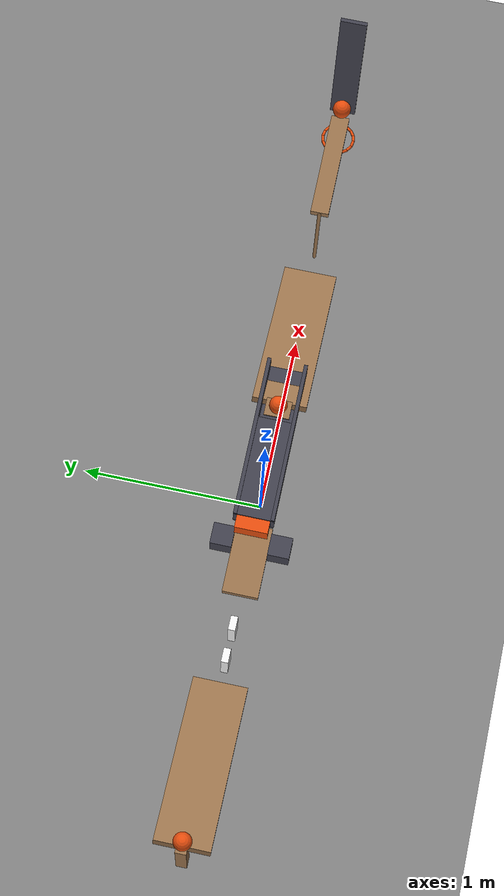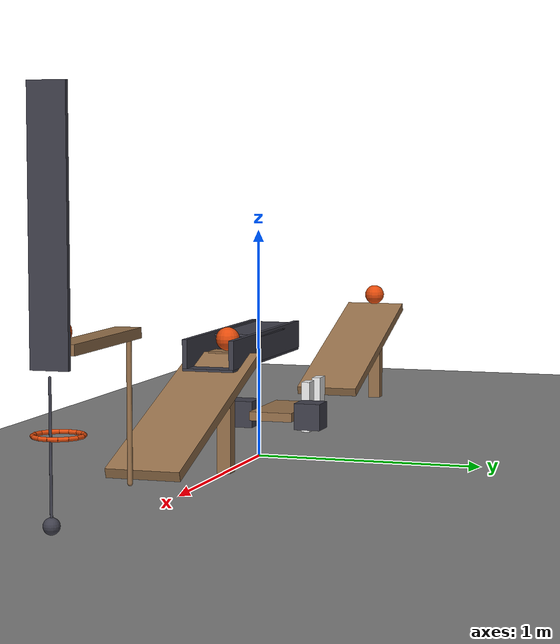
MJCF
<mujoco model="passive_ramp_domino_lever_chain">
  <compiler angle="radian"/>
  <option timestep="0.002"/>
  <worldbody>
    <geom name="floor" type="plane" size="8 8 0.1" friction="0.7 0 0"/>
    <body name="ramp1">
      <geom name="ramp1_deck" type="box" pos="-1.53015 0 0.32101" size="0.5 0.15 0.02" euler="0 0.349066 0" friction="0.7 0 0" solref="0.01 1" rgba="0.6 0.45 0.3 1"/>
      <geom name="ramp1_leg" type="box" pos="-2 0 0.24601" size="0.03 0.03 0.24601" friction="0.7 0 0" solref="0.01 1" rgba="0.6 0.45 0.3 1"/>
    </body>
    <body name="ball1" pos="-1.97606 0 0.557799">
      <freejoint/>
      <geom name="ball1" type="sphere" pos="0 0 0" size="0.05" mass="0.2" condim="6" friction="0.7 0 0" solref="0.01 1" rgba="0.9 0.3 0.05 1"/>
    </body>
    <body name="domino1" pos="-0.920307 0 0.12">
      <freejoint/>
      <geom name="domino1" type="box" pos="0 0 0" size="0.04 0.02 0.12" mass="0.25" friction="0.7 0 0" solref="0.01 1" rgba="0.95 0.95 0.95 1"/>
    </body>
    <body name="domino2" pos="-0.740307 0 0.12">
      <freejoint/>
      <geom name="domino2" type="box" pos="0 0 0" size="0.04 0.02 0.12" mass="0.25" friction="0.7 0 0" solref="0.01 1" rgba="0.95 0.95 0.95 1"/>
    </body>
    <body name="flap1" pos="-0.560307 0 0.15">
      <joint name="flap_hinge" type="hinge" pos="0 0 0" axis="0 1 0" limited="true" range="-1.5708 -0.436332" damping="0.04"/>
      <geom name="flap1" type="box" pos="0.2 0 0" size="0.2 0.1 0.02" mass="0.3" friction="0.7 0 0" solref="0.01 1" rgba="0.6 0.45 0.3 1"/>
      <geom name="flap counterweight left" type="box" pos="0.3 0.16 0" size="0.06 0.06 0.06" mass="0.35" friction="0.7 0 0" solref="0.01 1" rgba="0.25 0.25 0.3 1"/>
      <geom name="flap counterweight right" type="box" pos="0.3 -0.16 0" size="0.06 0.06 0.06" mass="0.35" friction="0.7 0 0" solref="0.01 1" rgba="0.25 0.25 0.3 1"/>
    </body>
    <body name="cart track">
      <geom name="cart track" type="box" pos="0.209693 0 0.458304" size="0.45 0.11 0.005" friction="0.7 0 0" solref="0.01 1" rgba="0.25 0.25 0.3 1"/>
    </body>
    <body name="cart guide left">
      <geom name="cart guide left" type="box" pos="0.209693 0.101 0.523304" size="0.45 0.01 0.06" friction="0.7 0 0" solref="0.01 1" rgba="0.25 0.25 0.3 1"/>
    </body>
    <body name="cart guide right">
      <geom name="cart guide right" type="box" pos="0.209693 -0.101 0.523304" size="0.45 0.01 0.06" friction="0.7 0 0" solref="0.01 1" rgba="0.25 0.25 0.3 1"/>
    </body>
    <body name="cart guide roof">
      <geom name="cart guide roof" type="box" pos="0.0396926 0 0.569304" size="0.28 0.111 0.005" friction="0.7 0 0" solref="0.01 1" rgba="0.25 0.25 0.3 1"/>
    </body>
    <body name="cart1" pos="-0.200307 0 0.513304">
      <freejoint/>
      <geom name="cart1" type="box" pos="0 0 0" size="0.11 0.09 0.05" mass="0.5" friction="0.7 0 0" solref="0.01 1" rgba="0.9 0.3 0.05 1"/>
    </body>
    <body name="ball2 cradle">
      <geom name="ball2 cradle" type="box" pos="0.409693 0 0.508304" size="0.05 0.07 0.005" friction="0.7 0 0" solref="0.01 1" rgba="0.6 0.45 0.3 1"/>
    </body>
    <body name="ramp2">
      <geom name="ramp2_deck" type="box" pos="0.909539 0 0.32101" size="0.5 0.15 0.02" euler="0 0.349066 0" friction="0.7 0 0" solref="0.01 1" rgba="0.6 0.45 0.3 1"/>
      <geom name="ramp2_leg" type="box" pos="0.439693 0 0.24601" size="0.03 0.03 0.24601" friction="0.7 0 0" solref="0.01 1" rgba="0.6 0.45 0.3 1"/>
    </body>
    <body name="ball2" pos="0.409693 0 0.563304">
      <freejoint/>
      <geom name="ball2" type="sphere" pos="0 0 0" size="0.05" mass="0.2" condim="6" friction="0.7 0 0" solref="0.01 1" rgba="0.9 0.3 0.05 1"/>
    </body>
    <body name="lever1" pos="1.79939 0 0.7">
      <joint name="lever_hinge" type="hinge" pos="0 0 0" axis="0 1 0" limited="true" range="-0.785398 0" damping="0.04"/>
      <geom name="lever1" type="box" pos="0 0 0" size="0.3 0.05 0.02" mass="0.5" friction="0.7 0 0" solref="0.01 1" rgba="0.6 0.45 0.3 1"/>
      <geom name="lever striker" type="capsule" size="0.01" fromto="-0.3 0 0 -0.3 0 -0.56" mass="0.01" friction="0.7 0 0" solref="0.01 1" rgba="0.6 0.45 0.3 1"/>
    </body>
    <body name="ball3" pos="2.12439 0 0.763301">
      <freejoint/>
      <geom name="ball3" type="sphere" pos="0 0 0" size="0.05" mass="0.2" condim="6" friction="0.7 0 0" solref="0.01 1" rgba="0.9 0.3 0.05 1"/>
    </body>
    <body name="ball3 vertical guide">
      <geom name="ball3 vertical guide" type="box" pos="2.18439 0 1.12" size="0.01 0.07 0.48" friction="0.7 0 0" solref="0.01 1" rgba="0.25 0.25 0.3 1"/>
    </body>
    <body name="ring1">
      <geom name="ring1_00" type="capsule" size="0.008" fromto="2.21239 0 0.413301 2.20569 0.0336761 0.413301" friction="0.7 0 0" solref="0.01 1" rgba="0.9 0.3 0.05 1"/>
      <geom name="ring1_01" type="capsule" size="0.008" fromto="2.20569 0.0336761 0.413301 2.18661 0.0622254 0.413301" friction="0.7 0 0" solref="0.01 1" rgba="0.9 0.3 0.05 1"/>
      <geom name="ring1_02" type="capsule" size="0.008" fromto="2.18661 0.0622254 0.413301 2.15806 0.0813014 0.413301" friction="0.7 0 0" solref="0.01 1" rgba="0.9 0.3 0.05 1"/>
      <geom name="ring1_03" type="capsule" size="0.008" fromto="2.15806 0.0813014 0.413301 2.12439 0.088 0.413301" friction="0.7 0 0" solref="0.01 1" rgba="0.9 0.3 0.05 1"/>
      <geom name="ring1_04" type="capsule" size="0.008" fromto="2.12439 0.088 0.413301 2.09071 0.0813014 0.413301" friction="0.7 0 0" solref="0.01 1" rgba="0.9 0.3 0.05 1"/>
      <geom name="ring1_05" type="capsule" size="0.008" fromto="2.09071 0.0813014 0.413301 2.06216 0.0622254 0.413301" friction="0.7 0 0" solref="0.01 1" rgba="0.9 0.3 0.05 1"/>
      <geom name="ring1_06" type="capsule" size="0.008" fromto="2.06216 0.0622254 0.413301 2.04308 0.0336761 0.413301" friction="0.7 0 0" solref="0.01 1" rgba="0.9 0.3 0.05 1"/>
      <geom name="ring1_07" type="capsule" size="0.008" fromto="2.04308 0.0336761 0.413301 2.03639 1.07769e-17 0.413301" friction="0.7 0 0" solref="0.01 1" rgba="0.9 0.3 0.05 1"/>
      <geom name="ring1_08" type="capsule" size="0.008" fromto="2.03639 1.07769e-17 0.413301 2.04308 -0.0336761 0.413301" friction="0.7 0 0" solref="0.01 1" rgba="0.9 0.3 0.05 1"/>
      <geom name="ring1_09" type="capsule" size="0.008" fromto="2.04308 -0.0336761 0.413301 2.06216 -0.0622254 0.413301" friction="0.7 0 0" solref="0.01 1" rgba="0.9 0.3 0.05 1"/>
      <geom name="ring1_10" type="capsule" size="0.008" fromto="2.06216 -0.0622254 0.413301 2.09071 -0.0813014 0.413301" friction="0.7 0 0" solref="0.01 1" rgba="0.9 0.3 0.05 1"/>
      <geom name="ring1_11" type="capsule" size="0.008" fromto="2.09071 -0.0813014 0.413301 2.12439 -0.088 0.413301" friction="0.7 0 0" solref="0.01 1" rgba="0.9 0.3 0.05 1"/>
      <geom name="ring1_12" type="capsule" size="0.008" fromto="2.12439 -0.088 0.413301 2.15806 -0.0813014 0.413301" friction="0.7 0 0" solref="0.01 1" rgba="0.9 0.3 0.05 1"/>
      <geom name="ring1_13" type="capsule" size="0.008" fromto="2.15806 -0.0813014 0.413301 2.18661 -0.0622254 0.413301" friction="0.7 0 0" solref="0.01 1" rgba="0.9 0.3 0.05 1"/>
      <geom name="ring1_14" type="capsule" size="0.008" fromto="2.18661 -0.0622254 0.413301 2.20569 -0.0336761 0.413301" friction="0.7 0 0" solref="0.01 1" rgba="0.9 0.3 0.05 1"/>
      <geom name="ring1_15" type="capsule" size="0.008" fromto="2.20569 -0.0336761 0.413301 2.21239 -2.15538e-17 0.413301" friction="0.7 0 0" solref="0.01 1" rgba="0.9 0.3 0.05 1"/>
    </body>
    <body name="pendulum1" pos="2.18939 0 0.616664">
      <joint name="pendulum_hinge" type="hinge" pos="0 0 0" axis="0 1 0" damping="0.04"/>
      <geom name="pendulum1" type="sphere" pos="0 0 -0.5" size="0.03" mass="0.34" friction="0.7 0 0" solref="0.01 1" rgba="0.25 0.25 0.3 1"/>
      <geom name="pendulum rod" type="capsule" size="0.005" fromto="0 0 0 0 0 -0.47" mass="0.01" friction="0.7 0 0" solref="0.01 1" rgba="0.25 0.25 0.3 1"/>
    </body>
  </worldbody>
  <keyframe>
    <key name="start" qpos="-1.97606 0 0.557799 1 0 0 0 -0.920307 0 0.12 1 0 0 0 -0.740307 0 0.12 1 0 0 0 -1.5708 -0.200307 0 0.513304 1 0 0 0 0.409693 0 0.563304 1 0 0 0 0 2.12439 0 0.763301 1 0 0 0 0" qvel="0 0 0 0 0 0 0 0 0 0 0 0 0 0 0 0 0 0 0 0 0 0 0 0 0 0 0 0 0 0 0 0 0 0 0 0 0 0 0"/>
  </keyframe>
</mujoco>
